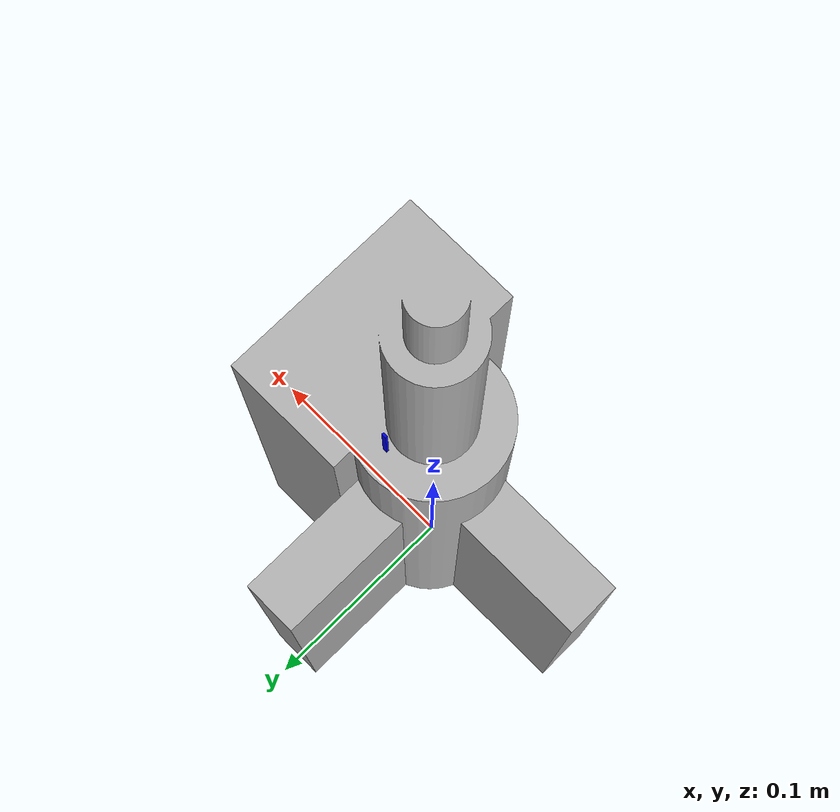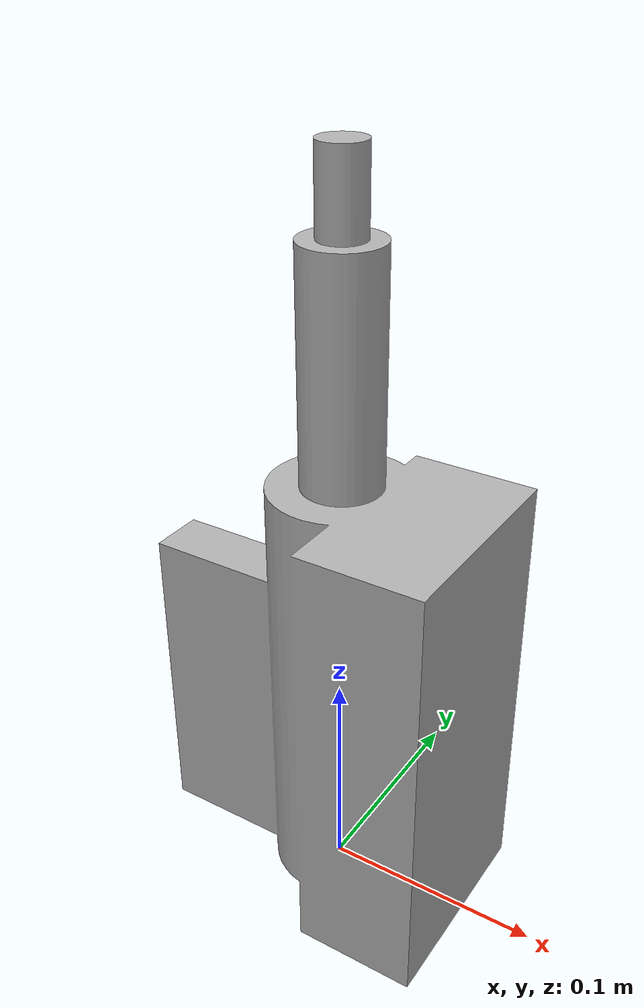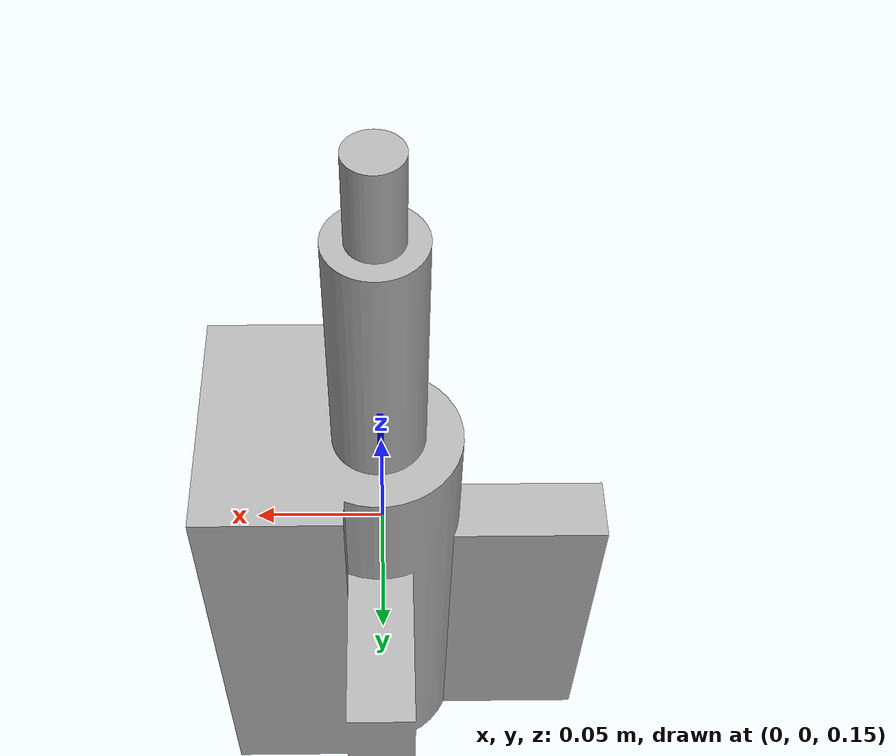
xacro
<?xml version="1.0"?>
<robot xmlns:xacro="http://ros.org/wiki/xacro" name="pipette">
  <xacro:arg name="parent" default="tool0"/>

  <xacro:include filename="$(find pipette_description)/urdf/pipette_macro.urdf.xacro"/>

  <link name="$(arg parent)"/>
  <xacro:pipette
    name="pipette"
    prefix=""
    parent="$(arg parent)"
  />
</robot>

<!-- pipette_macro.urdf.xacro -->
<robot xmlns:xacro="http://ros.org/wiki/xacro">
  <!--
    Static URDF description for pipette tool
    Replace placeholder meshes with your actual CAD files
  -->

  <xacro:macro
    name="pipette"
    params="name
            prefix
            parent
            pipette_mass:=0.200
            xyz:='0 0 0'
            rpy:='0 0 0'"
  >

    <!-- Pipette physical dimensions (adjust based on your CAD) -->
    <xacro:property name="pipette_length" value="0.34"/>  <!-- 15cm length -->
    <xacro:property name="pipette_radius" value="0.02"/>   <!-- 2cm radius -->

    <!-- Base position and orientation for all components -->
    <xacro:property name="base_xyz_x" value="-0.0860"/>
    <xacro:property name="base_xyz_y" value="-0.3224"/>
    <xacro:property name="base_xyz_z" value="-0.058"/>
    <xacro:property name="base_rpy_x" value="0"/>
    <xacro:property name="base_rpy_y" value="0"/>
    <xacro:property name="base_rpy_z" value="0"/>

    <!-- Visual component offsets -->
    <xacro:property name="visual_xyz_offset_x" value="0"/>
    <xacro:property name="visual_xyz_offset_y" value="0.0043"/>
    <xacro:property name="visual_xyz_offset_z" value="0.0183" />
    <xacro:property name="visual_rpy_offset_x" value="0"/>
    <xacro:property name="visual_rpy_offset_y" value="0"/>
    <xacro:property name="visual_rpy_offset_z" value="0"/>

    <!-- Collision component offsets -->
    <xacro:property name="collision_xyz_offset_x" value="0"/>
    <xacro:property name="collision_xyz_offset_y" value="0"/>
    <xacro:property name="collision_xyz_offset_z" value="0"/>
    <xacro:property name="collision_rpy_offset_x" value="0"/>
    <xacro:property name="collision_rpy_offset_y" value="0"/>
    <xacro:property name="collision_rpy_offset_z" value="0"/>

    <!-- Inertial component offsets -->
    <xacro:property name="inertial_xyz_offset_x" value="0"/>
    <xacro:property name="inertial_xyz_offset_y" value="0"/>
    <xacro:property name="inertial_xyz_offset_z" value="0"/>
    <xacro:property name="inertial_rpy_offset_x" value="0"/>
    <xacro:property name="inertial_rpy_offset_y" value="0"/>
    <xacro:property name="inertial_rpy_offset_z" value="0"/>

    <!-- Main attachment joint -->
    <joint name="${prefix}pipette_attachment_joint" type="fixed">
      <origin xyz="${xyz}" rpy="${rpy}"/>
      <parent link="${parent}"/>
      <child link="${prefix}pipette_base_link"/>
    </joint>

    <!-- Main pipette body (base positioning) -->
    <link name="${prefix}pipette_base_link"/>

    <!-- Intermediate joint for 90-degree rotation -->
    <joint name="${prefix}pipette_orientation_joint" type="fixed">
      <origin xyz="-0.09 -0.055 ${pipette_length}" rpy="${base_rpy_x - 1.5708} ${base_rpy_y} ${base_rpy_z}"/>
      <parent link="${prefix}pipette_base_link"/>
      <child link="${prefix}pipette_body_link"/>
    </joint>

    <!-- Pipette body link with visual, collision and inertial -->
    <link name="${prefix}pipette_body_link">
      <visual>
        <origin xyz="${visual_xyz_offset_x} ${visual_xyz_offset_y} ${visual_xyz_offset_z}"
                rpy="${visual_rpy_offset_x} ${visual_rpy_offset_y} ${visual_rpy_offset_z}"/>
        <geometry>
          <!-- Replace this cylinder with your CAD mesh -->
          <mesh filename="package://pipette_description/meshes/visual/pipettor_visual.stl" scale="0.001 0.001 0.001" />
        </geometry>
        <material name="pipette_gray">
          <color rgba="0.7 0.7 0.7 1.0"/>
        </material>
      </visual>

      <collision>
        <origin xyz="${collision_xyz_offset_x} ${collision_xyz_offset_y} ${collision_xyz_offset_z}"
                rpy="${collision_rpy_offset_x} ${collision_rpy_offset_y} ${collision_rpy_offset_z}"/>
        <geometry>
          <!-- Replace this cylinder with simplified collision mesh -->
          <mesh filename="package://pipette_description/meshes/collision/pipettor_collision.stl" scale="0.001 0.001 0.001" />
        </geometry>
      </collision>

      <inertial>
        <origin xyz="${inertial_xyz_offset_x} ${inertial_xyz_offset_y} ${inertial_xyz_offset_z}"
                rpy="${inertial_rpy_offset_x} ${inertial_rpy_offset_y} ${inertial_rpy_offset_z}"/>
        <mass value="${pipette_mass}"/>
        <inertia ixx="${pipette_mass * (3 * pipette_radius * pipette_radius + pipette_length * pipette_length) / 12}"
                 ixy="0.0"
                 ixz="0.0"
                 iyy="${pipette_mass * (3 * pipette_radius * pipette_radius + pipette_length * pipette_length) / 12}"
                 iyz="0.0"
                 izz="${pipette_mass * pipette_radius * pipette_radius / 2}"/>
      </inertial>
    </link>

    <!-- LED strip (visual element only) -->
    <joint name="${prefix}led_strip_joint" type="fixed">
      <origin xyz="0 ${pipette_radius + 0.005} ${pipette_length * 0.7}" rpy="0 0 0"/>
      <parent link="${prefix}pipette_base_link"/>
      <child link="${prefix}led_strip_link"/>
    </joint>

    <link name="${prefix}led_strip_link">
      <visual>
        <origin xyz="0 0 0" rpy="0 0 0"/>
        <geometry>
          <box size="0.002 0.001 0.02"/>  <!-- Small LED strip representation -->
        </geometry>
        <material name="led_strip">
          <color rgba="0.0 0.0 1.0 1.0"/>  <!-- Blue when off -->
        </material>
      </visual>
    </link>

    <!-- Plunger and tip ejection are handled by external driver -->
    <!-- No joints needed - pipette control is managed outside of MoveIt -->

    <!-- Tool tip reference frame -->
    <joint name="${prefix}pipette_tip_joint" type="fixed">
      <origin xyz="0 0 ${pipette_length}" rpy="0 0 0"/>
      <parent link="${prefix}pipette_base_link"/>
      <child link="${prefix}pipette_tip_link"/>
    </joint>

    <link name="${prefix}pipette_tip_link"/>

  </xacro:macro>
</robot>
